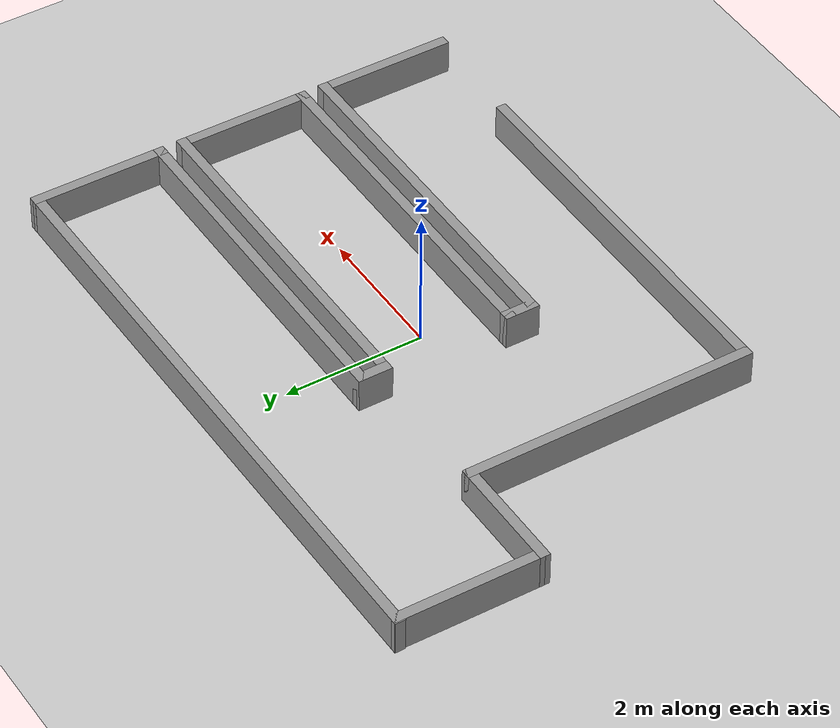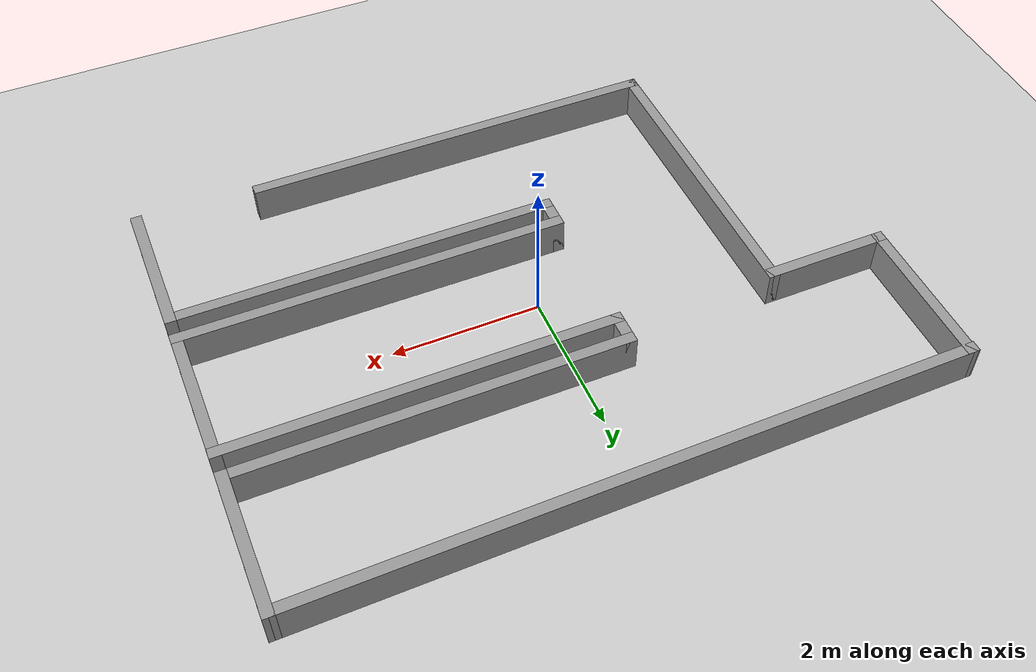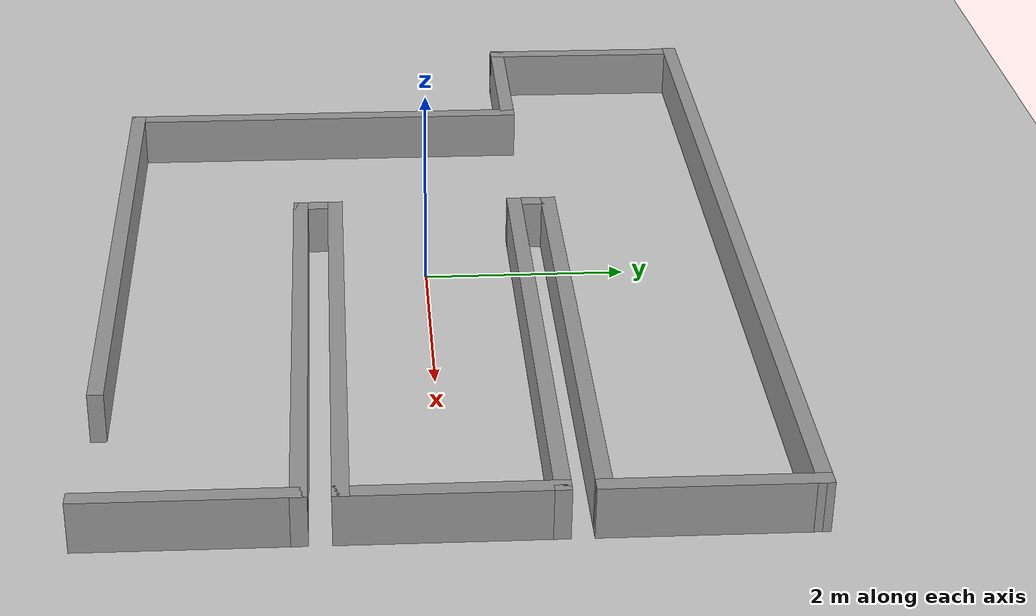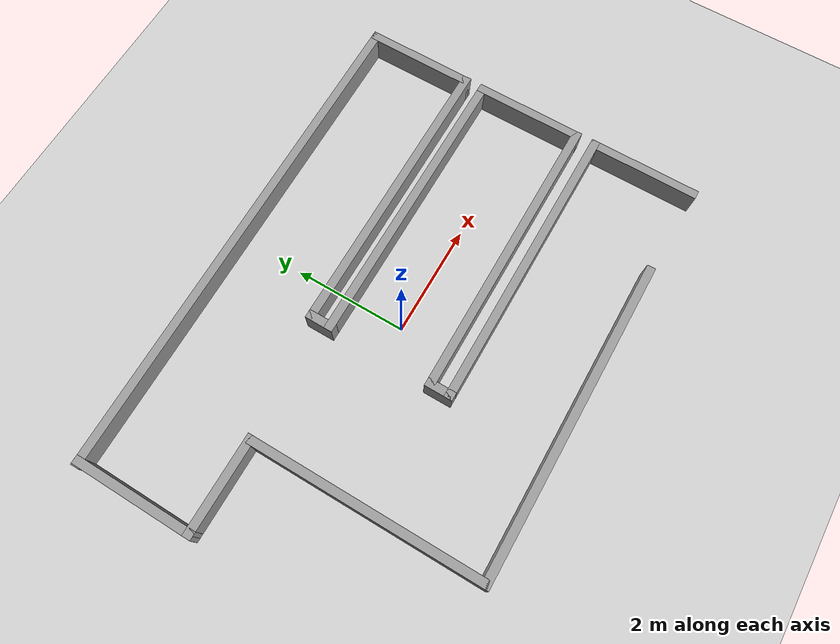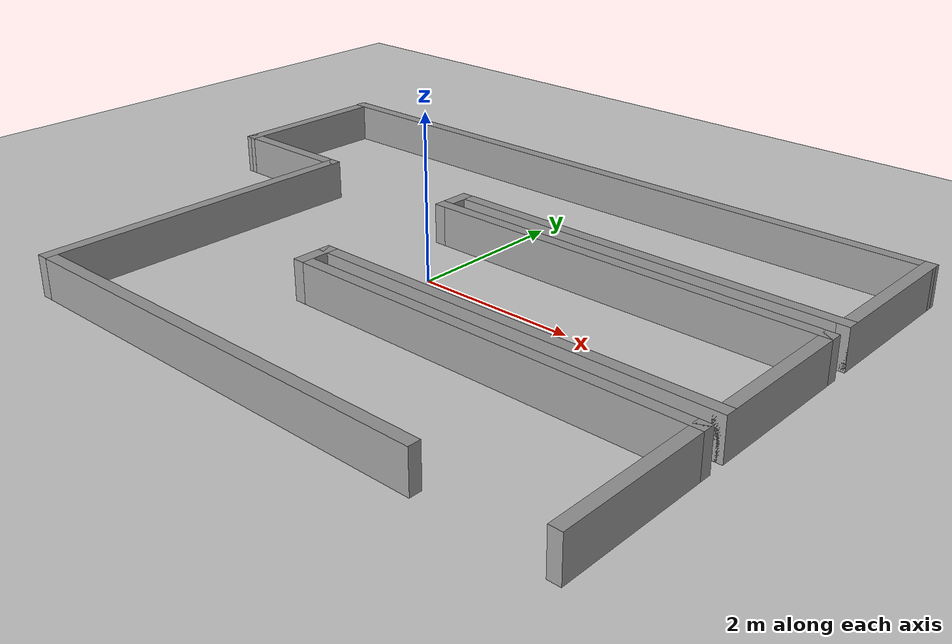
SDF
<sdf version="1.4">
  <world name="default">

    <scene>
      <ambient>0.4 0.4 0.4 1</ambient>
      <background>0.7 0.7 0.7 1</background>
      <shadows>true</shadows>
    </scene>

    <!-- A global light source -->
    <include>
      <uri>model://sun</uri>
    </include>

    <!-- A ground plane -->
    <include>
      <uri>model://ground_plane</uri>
    </include>

    <!-- Maze -->
    <include>
      <uri>model://maze_2</uri>
    </include>

    <physics type="ode">
      <real_time_update_rate>1000.0</real_time_update_rate>
      <max_step_size>0.001</max_step_size>
      <real_time_factor>1</real_time_factor>
      <ode>
        <solver>
          <type>quick</type>
          <iters>150</iters>
          <precon_iters>0</precon_iters>
          <sor>1.400000</sor>
          <use_dynamic_moi_rescaling>1</use_dynamic_moi_rescaling>
        </solver>
        <constraints>
          <cfm>0.00001</cfm>
          <erp>0.2</erp>
          <contact_max_correcting_vel>2000.000000</contact_max_correcting_vel>
          <contact_surface_layer>0.01000</contact_surface_layer>
        </constraints>
      </ode>
    </physics>
  </world>

</sdf>

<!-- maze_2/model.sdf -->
<sdf version='1.7'>
  <model name='maze_2'>
    <pose>0.019392 0.01925 0 0 -0 0</pose>
    <link name='Wall_10'>
      <collision name='Wall_10_Collision'>
        <geometry>
          <box>
            <size>0.5 0.15 0.5</size>
          </box>
        </geometry>
        <pose>0 0 0.25 0 -0 0</pose>
      </collision>
      <visual name='Wall_10_Visual'>
        <pose>0 0 0.25 0 -0 0</pose>
        <geometry>
          <box>
            <size>0.5 0.15 0.5</size>
          </box>
        </geometry>
        <material>
          <script>
            <uri>file://media/materials/scripts/gazebo.material</uri>
            <name>Gazebo/Grey</name>
          </script>
          <ambient>1 1 1 1</ambient>
        </material>
        <meta>
          <layer>0</layer>
        </meta>
      </visual>
      <pose>-0.673392 -1.10025 0 0 -0 1.5708</pose>
    </link>
    <link name='Wall_11'>
      <collision name='Wall_11_Collision'>
        <geometry>
          <box>
            <size>5.25 0.15 0.5</size>
          </box>
        </geometry>
        <pose>0 0 0.25 0 -0 0</pose>
      </collision>
      <visual name='Wall_11_Visual'>
        <pose>0 0 0.25 0 -0 0</pose>
        <geometry>
          <box>
            <size>5.25 0.15 0.5</size>
          </box>
        </geometry>
        <material>
          <script>
            <uri>file://media/materials/scripts/gazebo.material</uri>
            <name>Gazebo/Grey</name>
          </script>
          <ambient>1 1 1 1</ambient>
        </material>
        <meta>
          <layer>0</layer>
        </meta>
      </visual>
      <pose>1.87661 -0.92525 0 0 -0 0</pose>
    </link>
    <link name='Wall_12'>
      <collision name='Wall_12_Collision'>
        <geometry>
          <box>
            <size>2 0.15 0.5</size>
          </box>
        </geometry>
        <pose>0 0 0.25 0 -0 0</pose>
      </collision>
      <visual name='Wall_12_Visual'>
        <pose>0 0 0.25 0 -0 0</pose>
        <geometry>
          <box>
            <size>2 0.15 0.5</size>
          </box>
        </geometry>
        <material>
          <script>
            <uri>file://media/materials/scripts/gazebo.material</uri>
            <name>Gazebo/Grey</name>
          </script>
          <ambient>1 1 1 1</ambient>
        </material>
        <meta>
          <layer>0</layer>
        </meta>
      </visual>
      <pose>4.42661 -0.00025 0 0 -0 1.5708</pose>
    </link>
    <link name='Wall_13'>
      <collision name='Wall_13_Collision'>
        <geometry>
          <box>
            <size>5.25 0.15 0.5</size>
          </box>
        </geometry>
        <pose>0 0 0.25 0 -0 0</pose>
      </collision>
      <visual name='Wall_13_Visual'>
        <pose>0 0 0.25 0 -0 0</pose>
        <geometry>
          <box>
            <size>5.25 0.15 0.5</size>
          </box>
        </geometry>
        <material>
          <script>
            <uri>file://media/materials/scripts/gazebo.material</uri>
            <name>Gazebo/Grey</name>
          </script>
          <ambient>1 1 1 1</ambient>
        </material>
        <meta>
          <layer>0</layer>
        </meta>
      </visual>
      <pose>1.87661 0.92475 0 0 -0 3.14159</pose>
    </link>
    <link name='Wall_14'>
      <collision name='Wall_14_Collision'>
        <geometry>
          <box>
            <size>0.5 0.15 0.5</size>
          </box>
        </geometry>
        <pose>0 0 0.25 0 -0 0</pose>
      </collision>
      <visual name='Wall_14_Visual'>
        <pose>0 0 0.25 0 -0 0</pose>
        <geometry>
          <box>
            <size>0.5 0.15 0.5</size>
          </box>
        </geometry>
        <material>
          <script>
            <uri>file://media/materials/scripts/gazebo.material</uri>
            <name>Gazebo/Grey</name>
          </script>
          <ambient>1 1 1 1</ambient>
        </material>
        <meta>
          <layer>0</layer>
        </meta>
      </visual>
      <pose>-0.673392 1.09975 0 0 -0 1.5708</pose>
    </link>
    <link name='Wall_15'>
      <collision name='Wall_15_Collision'>
        <geometry>
          <box>
            <size>5.25 0.15 0.5</size>
          </box>
        </geometry>
        <pose>0 0 0.25 0 -0 0</pose>
      </collision>
      <visual name='Wall_15_Visual'>
        <pose>0 0 0.25 0 -0 0</pose>
        <geometry>
          <box>
            <size>5.25 0.15 0.5</size>
          </box>
        </geometry>
        <material>
          <script>
            <uri>file://media/materials/scripts/gazebo.material</uri>
            <name>Gazebo/Grey</name>
          </script>
          <ambient>1 1 1 1</ambient>
        </material>
        <meta>
          <layer>0</layer>
        </meta>
      </visual>
      <pose>1.87661 1.27475 0 0 -0 0</pose>
    </link>
    <link name='Wall_16'>
      <collision name='Wall_16_Collision'>
        <geometry>
          <box>
            <size>2 0.15 0.5</size>
          </box>
        </geometry>
        <pose>0 0 0.25 0 -0 0</pose>
      </collision>
      <visual name='Wall_16_Visual'>
        <pose>0 0 0.25 0 -0 0</pose>
        <geometry>
          <box>
            <size>2 0.15 0.5</size>
          </box>
        </geometry>
        <material>
          <script>
            <uri>file://media/materials/scripts/gazebo.material</uri>
            <name>Gazebo/Grey</name>
          </script>
          <ambient>1 1 1 1</ambient>
        </material>
        <meta>
          <layer>0</layer>
        </meta>
      </visual>
      <pose>4.42661 2.19975 0 0 -0 1.5708</pose>
    </link>
    <link name='Wall_18'>
      <collision name='Wall_18_Collision'>
        <geometry>
          <box>
            <size>9.00342 0.15 0.5</size>
          </box>
        </geometry>
        <pose>0 0 0.25 0 -0 0</pose>
      </collision>
      <visual name='Wall_18_Visual'>
        <pose>0 0 0.25 0 -0 0</pose>
        <geometry>
          <box>
            <size>9.00342 0.15 0.5</size>
          </box>
        </geometry>
        <material>
          <script>
            <uri>file://media/materials/scripts/gazebo.material</uri>
            <name>Gazebo/Grey</name>
          </script>
          <ambient>1 1 1 1</ambient>
        </material>
        <meta>
          <layer>0</layer>
        </meta>
      </visual>
      <pose>-0 3.09516 0 0 -0 0.006684</pose>
    </link>
    <link name='Wall_20'>
      <collision name='Wall_20_Collision'>
        <geometry>
          <box>
            <size>2.19787 0.15 0.5</size>
          </box>
        </geometry>
        <pose>0 0 0.25 0 -0 0</pose>
      </collision>
      <visual name='Wall_20_Visual'>
        <pose>0 0 0.25 0 -0 0</pose>
        <geometry>
          <box>
            <size>2.19787 0.15 0.5</size>
          </box>
        </geometry>
        <material>
          <script>
            <uri>file://media/materials/scripts/gazebo.material</uri>
            <name>Gazebo/Grey</name>
          </script>
          <ambient>1 1 1 1</ambient>
        </material>
        <meta>
          <layer>0</layer>
        </meta>
      </visual>
      <pose>-4.41631 2.04166 0 0 -0 -1.57772</pose>
    </link>
    <link name='Wall_4'>
      <collision name='Wall_4_Collision'>
        <geometry>
          <box>
            <size>1.75 0.15 0.5</size>
          </box>
        </geometry>
        <pose>0 0 0.25 0 -0 0</pose>
      </collision>
      <visual name='Wall_4_Visual'>
        <pose>0 0 0.25 0 -0 0</pose>
        <geometry>
          <box>
            <size>1.75 0.15 0.5</size>
          </box>
        </geometry>
        <material>
          <script>
            <uri>file://media/materials/scripts/gazebo.material</uri>
            <name>Gazebo/Grey</name>
          </script>
          <ambient>1 1 1 1</ambient>
        </material>
        <meta>
          <layer>0</layer>
        </meta>
      </visual>
      <pose>-3.62339 1.01775 0 0 -0 0</pose>
    </link>
    <link name='Wall_5'>
      <collision name='Wall_5_Collision'>
        <geometry>
          <box>
            <size>4.25 0.15 0.5</size>
          </box>
        </geometry>
        <pose>0 0 0.25 0 -0 0</pose>
      </collision>
      <visual name='Wall_5_Visual'>
        <pose>0 0 0.25 0 -0 0</pose>
        <geometry>
          <box>
            <size>4.25 0.15 0.5</size>
          </box>
        </geometry>
        <material>
          <script>
            <uri>file://media/materials/scripts/gazebo.material</uri>
            <name>Gazebo/Grey</name>
          </script>
          <ambient>1 1 1 1</ambient>
        </material>
        <meta>
          <layer>0</layer>
        </meta>
      </visual>
      <pose>-2.82339 -1.03225 0 0 -0 -1.5708</pose>
    </link>
    <link name='Wall_6'>
      <collision name='Wall_6_Collision'>
        <geometry>
          <box>
            <size>5.75 0.15 0.5</size>
          </box>
        </geometry>
        <pose>0 0 0.25 0 -0 0</pose>
      </collision>
      <visual name='Wall_6_Visual'>
        <pose>0 0 0.25 0 -0 0</pose>
        <geometry>
          <box>
            <size>5.75 0.15 0.5</size>
          </box>
        </geometry>
        <material>
          <script>
            <uri>file://media/materials/scripts/gazebo.material</uri>
            <name>Gazebo/Grey</name>
          </script>
          <ambient>1 1 1 1</ambient>
        </material>
        <meta>
          <layer>0</layer>
        </meta>
      </visual>
      <pose>-0.023392 -3.08225 0 0 -0 0</pose>
    </link>
    <link name='Wall_8'>
      <collision name='Wall_8_Collision'>
        <geometry>
          <box>
            <size>2 0.15 0.5</size>
          </box>
        </geometry>
        <pose>0 0 0.25 0 -0 0</pose>
      </collision>
      <visual name='Wall_8_Visual'>
        <pose>0 0 0.25 0 -0 0</pose>
        <geometry>
          <box>
            <size>2 0.15 0.5</size>
          </box>
        </geometry>
        <material>
          <script>
            <uri>file://media/materials/scripts/gazebo.material</uri>
            <name>Gazebo/Grey</name>
          </script>
          <ambient>1 1 1 1</ambient>
        </material>
        <meta>
          <layer>0</layer>
        </meta>
      </visual>
      <pose>4.42661 -2.20025 0 0 -0 1.5708</pose>
    </link>
    <link name='Wall_9'>
      <collision name='Wall_9_Collision'>
        <geometry>
          <box>
            <size>5.25 0.15 0.5</size>
          </box>
        </geometry>
        <pose>0 0 0.25 0 -0 0</pose>
      </collision>
      <visual name='Wall_9_Visual'>
        <pose>0 0 0.25 0 -0 0</pose>
        <geometry>
          <box>
            <size>5.25 0.15 0.5</size>
          </box>
        </geometry>
        <material>
          <script>
            <uri>file://media/materials/scripts/gazebo.material</uri>
            <name>Gazebo/Grey</name>
          </script>
          <ambient>1 1 1 1</ambient>
        </material>
        <meta>
          <layer>0</layer>
        </meta>
      </visual>
      <pose>1.87661 -1.27525 0 0 -0 3.14159</pose>
    </link>
    <static>1</static>
  </model>
</sdf>
